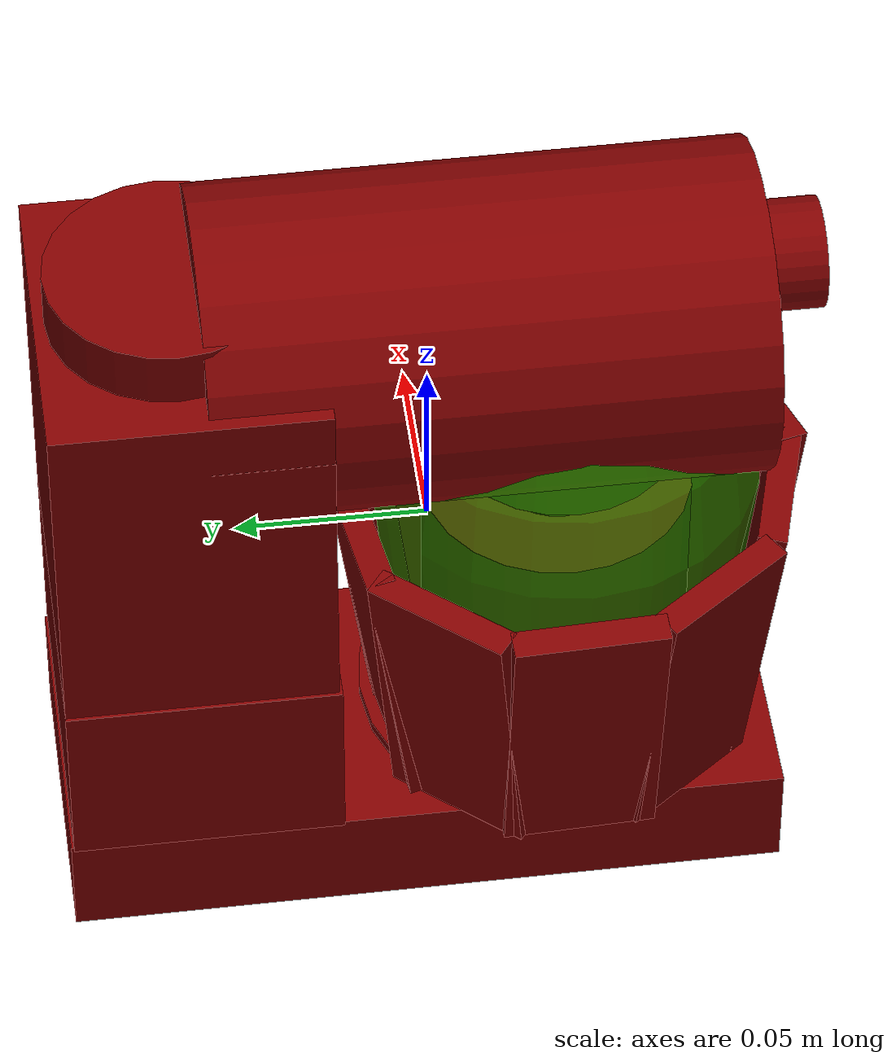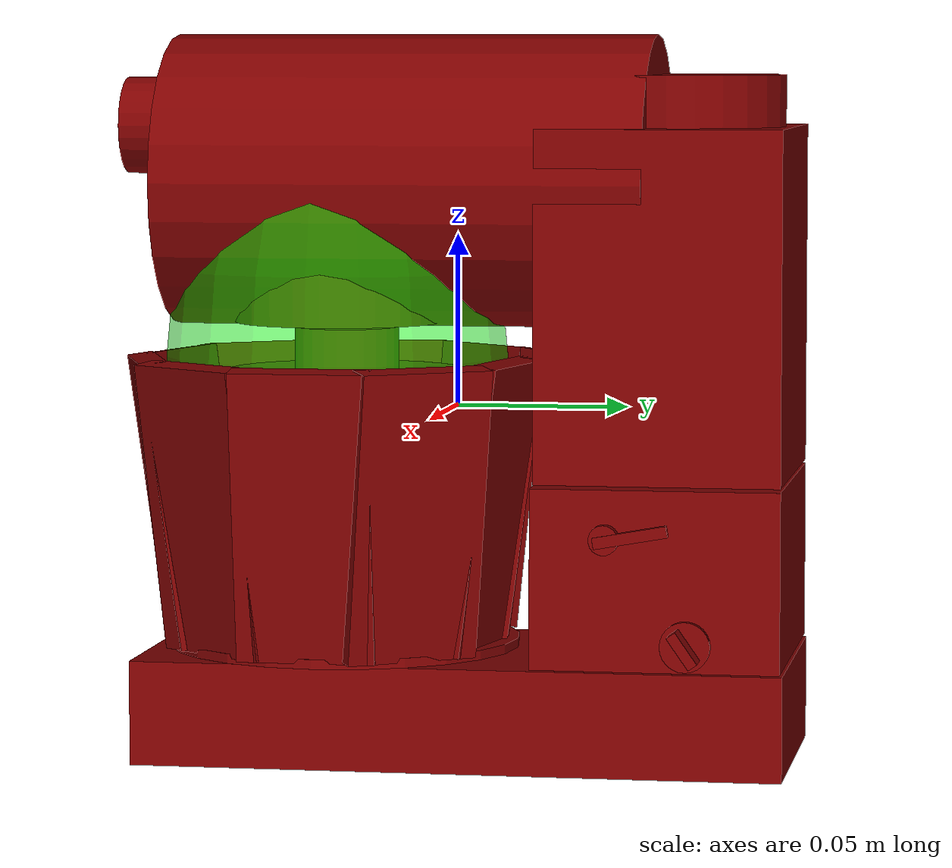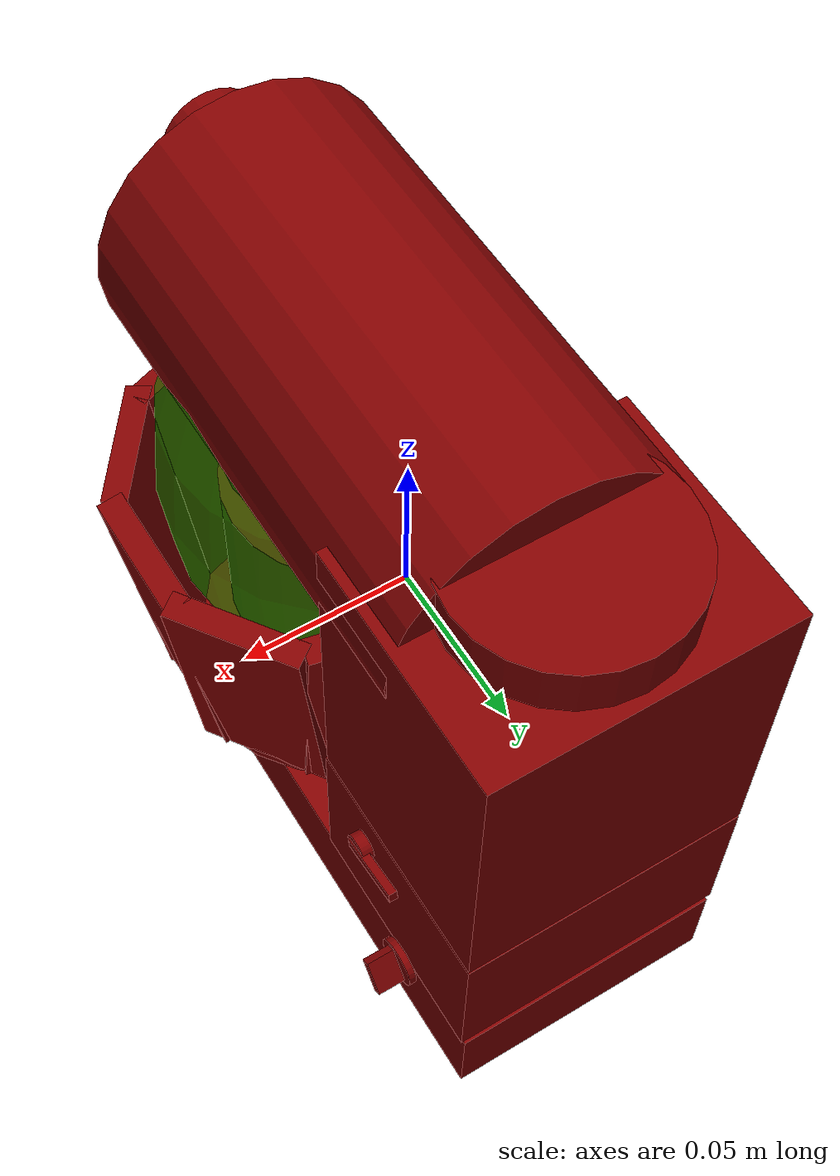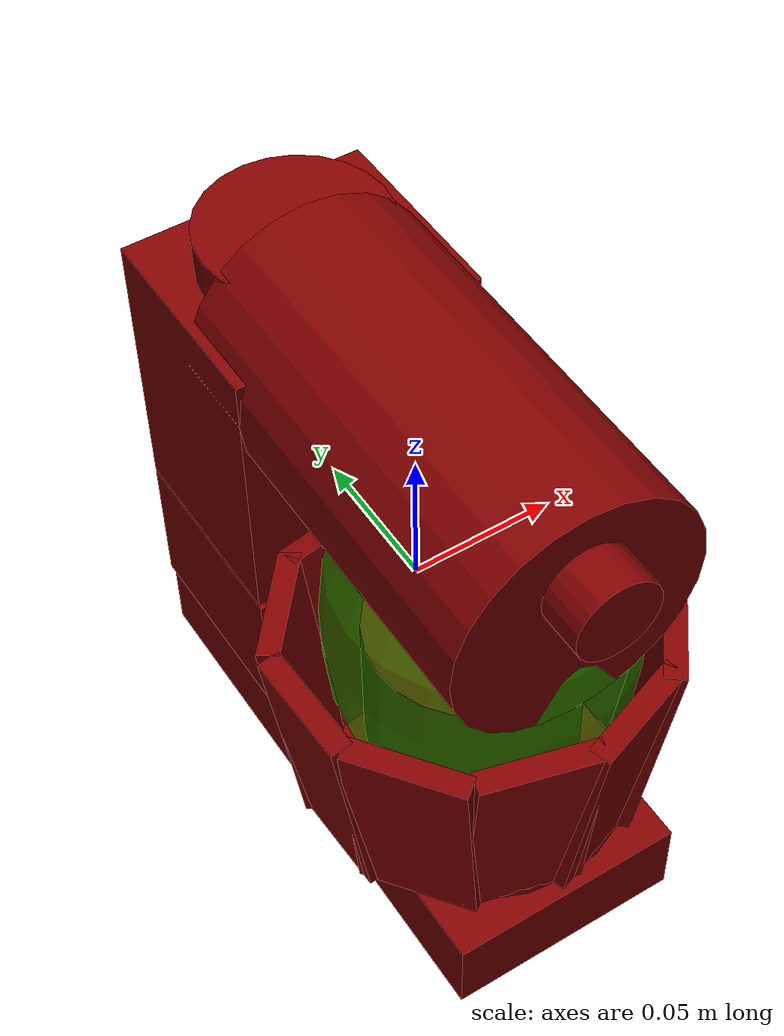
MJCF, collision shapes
<?xml version='1.0' encoding='UTF-8'?>
<mujoco model="model">
  <option timestep="0.002" gravity="0.0 0.0 -9.81"/>
  <compiler angle="radian"/>
  <asset>
    <mesh file="visuals/blender.obj" name="blender_vis"/>
    <mesh file="visuals/bowl.obj" name="bowl_vis"/>
    <mesh file="visuals/button_head_lock.obj" name="button_head_lock_vis"/>
    <mesh file="visuals/head.obj" name="head_vis"/>
    <mesh file="visuals/knob_speed.obj" name="knob_speed_vis"/>
    <mesh file="visuals/Body001.obj" name="Body001_vis"/>
    <texture file="visuals/T_BC001.png" name="Body001_material" type="2d"/>
    <material name="Body001_material" rgba="1 1 1 1.0" texture="Body001_material" shininess="0.2472135901451111" specular="2"/>
    <texture file="visuals/T_BC001.png" name="bowl_material" type="2d"/>
    <material name="bowl_material" rgba="1 1 1 1.0" texture="bowl_material" shininess="0.1472135901451111" specular="1"/>
    <texture file="visuals/T_BC001.png" name="button_head_lock_material" type="2d"/>
    <material name="button_head_lock_material" rgba="1 1 1 1.0" texture="button_head_lock_material" shininess="0.4472135901451111" specular="0.3103448502657381"/>
    <texture file="visuals/T_BC001.png" name="head_material" type="2d"/>
    <material name="head_material" rgba="1 1 1 1.0" texture="head_material" shininess="0.2472135901451111" specular="2"/>
    <texture file="visuals/T_BC001.png" name="blender_material" type="2d"/>
    <material name="blender_material" rgba="1 1 1 1.0" texture="blender_material" shininess="0.4472135901451111" specular="2"/>
    <texture file="visuals/T_BC001.png" name="knob_speed_material" type="2d"/>
    <material name="knob_speed_material" rgba="1 1 1 1.0" texture="knob_speed_material" shininess="0.4472135901451111" specular="0.3103448502657381"/>
  </asset>
  <default>
    <default class="visual">
      <geom conaffinity="0" contype="0" group="1" type="mesh"/>
    </default>
    <default class="collision">
      <geom group="0" rgba="0.5 0 0 0.5"/>
    </default>
    <default class="spawn">
      <geom group="0" rgba="1 1 1 0.5" contype="0" conaffinity="0"/>
      <site group="0" rgba="1 1 1 0.5"/>
    </default>
    <default class="region">
      <geom group="1" conaffinity="0" contype="0" rgba="0 1 0 0"/>
    </default>
  </default>
  <worldbody>
    <body>
      <body name="object">
        <geom mesh="Body001_vis" type="mesh" solimp="0.998 0.998 0.001" solref="0.001 1" friction="0.95 0.3 0.1" class="visual" material="Body001_material"/>
        <geom type="box" pos="-0.0004310235381126404 0.0626450777053833 -0.04559173062443733" size="0.042134400457143784 0.03553340956568718 0.025828372687101364" quat="1.0 0.0 0.0 0.0" class="collision"/>
        <geom type="box" pos="0.0 0.004708323627710342 -0.08704345673322678" size="0.040992505848407745 0.09414739161729813 0.015087174251675606" quat="1.0 0.0 0.0 0.0" class="collision"/>
        <body name="bowl">
          <geom mesh="bowl_vis" type="mesh" solimp="0.998 0.998 0.001" solref="0.001 1" friction="0.95 0.3 0.1" class="visual" material="bowl_material"/>
          <geom type="cylinder" pos="0.0021163448691368103 -0.03332949057221413 -0.0695764347910881" size="0.05134165659546852 0.0013763426104560494" quat="7.907536314633035e-07 0.0 0.0 1.0" class="collision"/>
          <geom type="box" pos="0.05469846725463867 -0.03526010736823082 -0.027490172535181046" size="0.0038105605635792017 0.01992732845246792 0.041925087571144104" quat="7.889205448918801e-07 0.9976818561553955 5.3811302080930545e-08 -0.06805067509412766" class="collision"/>
          <geom type="box" pos="0.043095558881759644 -0.06633421778678894 -0.027490172535181046" size="0.0038105593994259834 0.01992732472717762 0.041925083845853806" quat="-0.021448539569973946 0.946826696395874 -0.31446513533592224 -0.06458215415477753" class="collision"/>
          <geom type="box" pos="0.017766296863555908 -0.08356578648090363 -0.027490172535181046" size="0.0038105607964098454 0.01992732845246792 0.041925083845853806" quat="0.03932137414813042 -0.8142754435539246 0.5764760375022888 0.0555402897298336" class="collision"/>
          <geom type="box" pos="-0.013525791466236115 -0.08356823027133942 -0.027490172535181046" size="0.003810559632256627 0.01992732658982277 0.0419250950217247" quat="0.054057832807302475 -0.606026291847229 0.7925283908843994 0.04133569821715355" class="collision"/>
          <geom type="box" pos="-0.04284176230430603 -0.06521312892436981 -0.027490172535181046" size="0.003810561029240489 0.01992732658982277 0.041925106197595596" quat="0.06463616341352463 -0.31204259395599365 0.9476278424263 0.021284719929099083" class="collision"/>
          <geom type="box" pos="-0.05480490252375603 -0.03327237442135811 -0.027490172535181046" size="0.0038105621933937073 0.01992732845246792 0.0419250912964344" quat="0.06803962588310242 -0.01776481233537197 0.9975237250328064 0.00121095753274858" class="collision"/>
          <geom type="box" pos="-0.04357905685901642 -0.0011529196053743362 -0.027490172535181046" size="0.003810560330748558 0.01992732845246792 0.0419250950217247" quat="0.0639026090502739 0.3429870903491974 0.9368718862533569 -0.02339543029665947" class="collision"/>
          <geom type="box" pos="-0.016141384840011597 0.013807925395667553 -0.027490172535181046" size="0.0038105605635792017 0.01992732658982277 0.0419250950217247" quat="0.051528118550777435 0.6516742706298828 0.7554401159286499 -0.044449321925640106" class="collision"/>
          <geom type="box" pos="0.04631426930427551 -0.004778681322932243 -0.027490172535181046" size="0.0038105605635792017 0.01992732658982277 0.041925098747015" quat="0.020443733781576157 0.951599657535553 0.2997118830680847 -0.06490722298622131" class="collision"/>
          <geom type="box" pos="0.018610559403896332 0.012215384282171726 -0.027490172535181046" size="0.003810559632256627 0.01992732845246792 0.0419250912964344" quat="0.042815059423446655 0.7754780650138855 0.6276965141296387 -0.05289395898580551" class="collision"/>
          <geom name="reg_bowl" type="ellipsoid" pos="0.0009357933886349201 -0.03574977442622185 0.014289937913417816" size="0.049555111676454544 0.05049942806363106 0.08178877830505371" rgba="0 1 0 0.5" class="region"/>
        </body>
        <body name="button_head_lock">
          <joint axis="-1.0 0.0 0.0" pos="0.043715428560972214 0.04843621701002121 -0.033578451722860336" limited="true" name="button_head_lock_joint" range="0.0 1.117010721276371" type="hinge" damping="1" frictionloss="1" armature=".01" stiffness="0.05"/>
          <geom mesh="button_head_lock_vis" type="mesh" solimp="0.998 0.998 0.001" solref="0.001 1" friction="0.95 0.3 0.1" class="visual" material="button_head_lock_material"/>
          <geom type="cylinder" pos="0.04363176226615906 0.048574890941381454 -0.033692821860313416" size="0.004249905236065388 0.0016439202008768916" quat="0.7071068286895752 -0.0 0.7071067690849304 0.0" class="collision"/>
          <geom class="collision" type="box" pos="0.0444757342338562 0.05610574409365654 -0.03273214027285576" size="0.0012804667931050062 0.010646824724972248 0.001636094180867076" quat="0.9961075782775879 0.08814577013254166 1.9572289396170386e-17 1.010475796539977e-24" name="button_head_lock_main"/>
        </body>
        <body name="head">
          <joint axis="-1.0 0.0 0.0" pos="-1.4914898201823235e-05 0.09817400574684143 -0.019503867253661156" limited="true" name="head_joint" range="0.0 1.5707963267948966" type="hinge" damping="1" frictionloss="1" armature=".01" stiffness="0.05"/>
          <geom mesh="head_vis" type="mesh" solimp="0.998 0.998 0.001" solref="0.001 1" friction="0.95 0.3 0.1" class="visual" material="head_material"/>
          <geom type="cylinder" pos="-0.00011126697063446045 -0.012202950194478035 0.06557824462652206" size="0.04246494919061661 0.07064517587423325" quat="0.7071067094802856 0.70710688829422 0.0 0.0" class="collision"/>
          <geom type="cylinder" pos="-0.0006551966071128845 0.06430406868457794 0.07689616829156876" size="0.031119324266910553 0.019573740661144257" quat="1.0 0.0 0.0 0.0" class="collision"/>
          <geom type="cylinder" pos="2.86102294921875e-06 -0.0843304842710495 0.08138790726661682" size="0.014077305793762207 0.014077305793762207" quat="0.7071067094802856 0.70710688829422 -1.5700929612083792e-16 2.2148514736588345e-23" class="collision"/>
          <geom type="cylinder" pos="0.0021163448691368103 -0.03480721637606621 0.040137000381946564" size="0.03088000975549221 0.015879381448030472" quat="1.0 0.0 0.0 0.0" class="collision"/>
          <geom type="box" pos="-0.0004310235381126404 0.06308551132678986 0.031415510922670364" size="0.042134400457143784 0.03506212309002876 0.05013008415699005" quat="1.0 0.0 0.0 0.0" class="collision"/>
          <body name="blender">
            <joint axis="0.0 0.0 1.0" pos="4.4379266910254955e-05 -0.03446868062019348 0.004593409597873688" limited="false" name="blender_joint" range="0 360" type="hinge" damping="1" frictionloss="1" armature=".01" stiffness="0.05"/>
            <geom mesh="blender_vis" type="mesh" solimp="0.998 0.998 0.001" solref="0.001 1" friction="0.95 0.3 0.1" class="visual" material="blender_material"/>
            <geom type="cylinder" pos="-0.00033958256244659424 -0.03337163105607033 0.01612854190170765" size="0.015333653427660465 0.006463332567363977" quat="1.0 0.0 0.0 0.0" class="collision"/>
            <geom type="cylinder" pos="-0.00033958256244659424 -0.03337163105607033 -0.016413791105151176" size="0.03500000014901161 0.026481226086616516" quat="1.0 0.0 0.0 0.0" class="collision"/>
          </body>
        </body>
        <body name="knob_speed">
          <joint axis="-1.0 0.0 0.0" pos="0.045454323291778564 0.07192999869585037 -0.06326999515295029" limited="true" name="knob_speed_joint" range="0.0 3.752457891787808" type="hinge" damping="0.05" armature="0.001"/>
          <geom mesh="knob_speed_vis" type="mesh" solimp="0.998 0.998 0.001" solref="0.001 1" friction="0.95 0.3 0.1" class="visual" material="knob_speed_material"/>
          <geom type="cylinder" pos="0.045503631234169006 0.07187645137310028 -0.06328176707029343" size="0.007163526955991983 0.0010306257754564285" quat="0.7071068286895752 0.0 -0.7071067690849304 0.0" class="collision"/>
          <geom class="collision" type="box" pos="0.04971322789788246 0.07195042073726654 -0.06323572248220444" size="0.004999999888241291 0.00543934153392911 0.0015136105939745903" quat="0.4617486000061035 0.8870108723640442 0.0 0.0" name="knob_speed_main"/>
        </body>
        <geom class="region" name="reg_main" type="box" pos="3.9062462747097015e-05 0.0 0.0" size="0.04467361217737198 0.09943224287033081 0.10289833492040634"/>
      </body>
    </body>
  </worldbody>
  <actuator>
    <motor name="button_head_lock_joint_actuator" joint="button_head_lock_joint" gear="8"/>
    <motor name="head_joint_actuator" joint="head_joint" gear="50"/>
    <motor name="knob_speed_joint_actuator" joint="knob_speed_joint" gear="8"/>
    <motor name="blender_joint_actuator" joint="blender_joint" gear="20"/>
  </actuator>
</mujoco>
